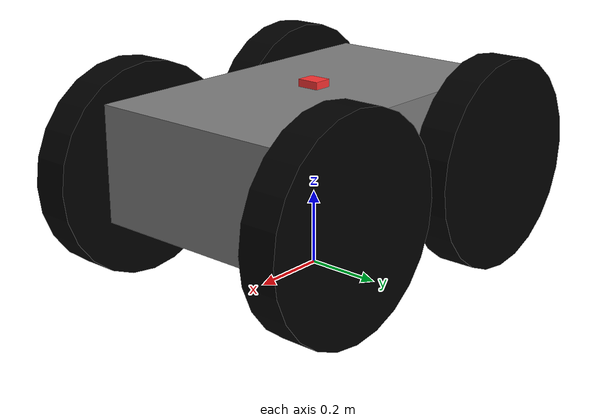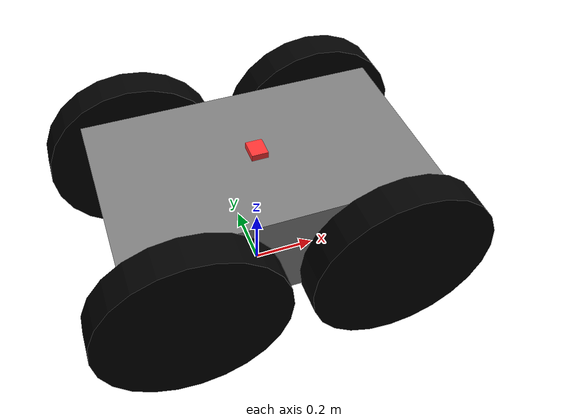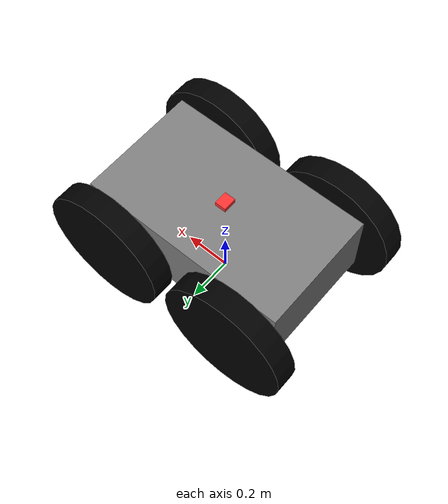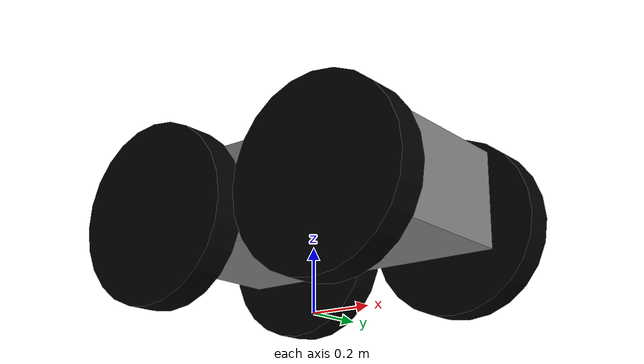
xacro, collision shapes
<?xml version="1.0"?>
<robot xmlns:xacro="http://www.ros.org/wiki/xacro"  name="RobuROC">

    <!-- This is RobuROC model for rviz visualisation -->
    <!-- Model visualisation is made of stl files and collison is made of simple shapes box and cylinders-->
    <!-- All parameters of robot are stated here: -->

    <xacro:property name="box_y" value="0.54" />
    <xacro:property name="box_x" value="0.925" />
    <xacro:property name="box_z" value="0.304" />
    <xacro:property name="box_m" value="100" />
    <xacro:property name="box_off_z" value="0.484" />
    <xacro:property name="cyl_l" value="0.1" />
    <xacro:property name="cyl_r" value="0.28" />
    <xacro:property name="cyl_m" value="10" />
    <xacro:property name="cyl_off_x" value="0.3068" />
    <xacro:property name="cyl_off_y" value="0.3425" />
    <xacro:property name="cyl_off_z" value="${box_off_z-0.204}" />
    <xacro:property name="rot_90" value="${pi/2}" />
    <xacro:property name="max_vel" value="2" />
    <xacro:property name="scale_factor" value="0.001" />
    <xacro:property name="scale" value="${scale_factor} ${scale_factor} ${scale_factor}" />
    <xacro:property name="IMU_y" value="0.06" />
    <xacro:property name="IMU_x" value="0.05" />
    <xacro:property name="IMU_z" value="0.02" />
    <xacro:property name="IMU_m" value="0.1" />
    <xacro:property name="IMU_off_z" value="${0.484+IMU_z/2}" />

    <!-- This will include inertia and color functions -->
    <xacro:include filename="include_RobuROC.xacro" />

    <!-- Initial link is empty link called world -->
    <link name="dummy"></link>

    <!-- Chassis joint has been off seted in z axis and set to fixed-->
    <joint name="chassis_joint" type="fixed">
        <parent link="dummy"/>
        <child link="chassis_link"/>
    </joint>

    <!--                Chassis Link                     -->

    <link name="chassis_link">
        <visual>
            <origin xyz="0 0 ${box_off_z}" rpy="${rot_90} 0 ${rot_90}"/>
            <geometry>
                <mesh filename="file://$(find RobuROC_sim)/meshes/chassis.STL" scale="${scale}"/>
            </geometry>
            <material name="grey" />
        </visual>
        <collision>
            <origin xyz="0 0 ${box_off_z-box_z/2}" rpy="0 0 0"/>
            <geometry>
                <box size="${box_x} ${box_y} ${box_z}" />
            </geometry>
        </collision>
       <xacro:inertial_box mass="${box_m}" x="${box_x}" y="${box_y}" z="${box_z}">
            <origin xyz="0.0 0 ${box_off_z-box_z/2}" rpy="0 0 0"/>
        </xacro:inertial_box>
    </link>

    <!-- All wheels has been modeled as continous joints -->

    <!--                WHEEL 1  +x +y                   -->

    <joint name="wheel_1_joint" type="continuous">
        <origin xyz="${cyl_off_x} ${cyl_off_y} ${cyl_off_z}" rpy="${rot_90} 0 0"/>
        <parent link="chassis_link"/>
        <child link="wheel_1_link"/>
        <axis xyz="0 0 1" />
        <limit effort="1000" velocity="${max_vel}"/>
        <dynamics damping="1.0" friction="1.0"/>
    </joint>

    <link name="wheel_1_link">
        <visual>
            <origin xyz="0 0 0" rpy="0 ${rot_90} 0"/>
            <geometry>
                <mesh filename="file://$(find RobuROC_sim)/meshes/wheel.STL" scale = "${scale}"/>
            </geometry>
            <material name="black" />
        </visual>
        <collision>
            <origin xyz="0 0 0" rpy="0 0 0"/>
            <geometry>
                <cylinder length="${cyl_l}" radius="${cyl_r}" />
            </geometry>
        </collision>
        <xacro:inertial_cylinder mass="${cyl_m}" length="${cyl_l}" radius="${cyl_r}">
            <origin xyz="0 0 0" rpy="0 0 0"/>
        </xacro:inertial_cylinder>
    </link>
    <!--                   WHEEL 2  +x -y                -->
    <joint name="wheel_2_joint" type="continuous">
        <origin xyz="${cyl_off_x} ${-cyl_off_y} ${cyl_off_z}" rpy="${rot_90} 0 0"/>
        <parent link="chassis_link"/>
        <child link="wheel_2_link"/>
        <axis xyz="0 0 1" />
        <limit effort="1000" velocity="${max_vel}"/>
        <dynamics damping="1.0" friction="1.0"/>
    </joint>

    <link name="wheel_2_link">
        <visual>
            <origin xyz="0 0 0" rpy="0 ${rot_90} 0"/>
            <geometry>
                <mesh filename="file://$(find RobuROC_sim)/meshes/wheel.STL" scale = "${scale}"/>
            </geometry>
            <material name="black" />
        </visual>
        <collision>
            <origin xyz="0 0 0" rpy="0 0 0"/>
            <geometry>
                <cylinder length="${cyl_l}" radius="${cyl_r}" />
            </geometry>
        </collision>
        <xacro:inertial_cylinder mass="${cyl_m}" length="${cyl_l}" radius="${cyl_r}">
            <origin xyz="0 0 0" rpy="0 0 0"/>
        </xacro:inertial_cylinder>
    </link>

    <!--                    WHEEL 3  -x -y               -->
    <joint name="wheel_3_joint" type="continuous">
        <origin xyz="${-cyl_off_x} ${-cyl_off_y} ${cyl_off_z}" rpy="${rot_90} 0 0"/>
        <parent link="chassis_link"/>
        <child link="wheel_3_link"/>
        <axis xyz="0 0 1" />
        <limit effort="1000" velocity="${max_vel}"/>
        <dynamics damping="1.0" friction="1.0"/>
    </joint>

    <link name="wheel_3_link">
        <visual>
            <origin xyz="0 0 0" rpy="0 ${rot_90} 0"/>
            <geometry>
                <mesh filename="file://$(find RobuROC_sim)/meshes/wheel.STL" scale = "${scale}"/>
            </geometry>
            <material name="black" />
        </visual>
        <collision>
            <origin xyz="0 0 0" rpy="0 0 0"/>
            <geometry>
                <cylinder length="${cyl_l}" radius="${cyl_r}" />
            </geometry>
        </collision>
        <xacro:inertial_cylinder mass="${cyl_m}" length="${cyl_l}" radius="${cyl_r}">
            <origin xyz="0 0 0" rpy="0 0 0"/>
        </xacro:inertial_cylinder>
    </link>

    <!--                    WHEEL 4  -x +y               -->
    <joint name="wheel_4_joint" type="continuous">
        <origin xyz="${-cyl_off_x} ${cyl_off_y} ${cyl_off_z}" rpy="${rot_90} 0 0"/>
        <parent link="chassis_link"/>
        <child link="wheel_4_link"/>
        <axis xyz="0 0 1" />
        <limit effort="1000" velocity="${max_vel}"/>
        <dynamics damping="1.0" friction="1.0"/>
    </joint>

    <link name="wheel_4_link">
        <visual>
            <origin xyz="0 0 0" rpy="0 ${rot_90} 0"/>
            <geometry>
                <mesh filename="file://$(find RobuROC_sim)/meshes/wheel.STL" scale = "${scale}"/>
            </geometry>
            <material name="black" />
        </visual>
        <collision>
            <origin xyz="0 0 0" rpy="0 0 0"/>
            <geometry>
                <cylinder length="${cyl_l}" radius="${cyl_r}" />
            </geometry>
        </collision>
        <xacro:inertial_cylinder mass="${cyl_m}" length="${cyl_l}" radius="${cyl_r}">
            <origin xyz="0 0 0" rpy="0 0 0"/>
        </xacro:inertial_cylinder>
    </link>

    <!--                IMU                              -->

    <joint name="IMU_joint" type="fixed">
        <origin xyz="0 0 ${IMU_off_z}"/>
        <parent link="chassis_link"/>
        <child link="IMU_link"/>
    </joint>

    <link name="IMU_link">
        <visual>
            <origin xyz="0 0 0" rpy="0 0 0"/>
            <geometry>
                <box size="${IMU_x} ${IMU_y} ${IMU_z}"/>
            </geometry>
            <material name="red" />
        </visual>
        <collision>
            <origin xyz="0 0 0" rpy="0 0 0"/>
            <geometry>
                <box size="${IMU_x} ${IMU_y} ${IMU_z}" />
            </geometry>
        </collision>
        <xacro:inertial_box mass="${IMU_m}" x="${IMU_x}" y="${IMU_y}" z="${IMU_z}">
            <origin xyz="0.0 0 0" rpy="0 0 0"/>
        </xacro:inertial_box>
    </link>
    <!--                  RGB-D Camera                   -->

    <!-- Include gazebo model -->
    <xacro:include filename="RobuROC_gazebo_sim.xacro" />

</robot>

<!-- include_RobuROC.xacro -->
<robot xmlns:xacro="http://www.ros.org/wiki/xacro" >

    <!-- This file is not a robot in and of itself, it just contains some useful tags that could be included in any robot -->
    <!--                Chassis                    -->
    <xacro:property name="box_y" value="0.54" />
    <xacro:property name="box_x" value="0.925" />
    <xacro:property name="box_z" value="0.304" />
    <xacro:property name="box_m" value="100" />
    <xacro:property name="box_off_z" value="0.484" />
    <xacro:property name="chassis_vis_origin" value="0 0 ${box_off_z}" />
    <xacro:property name="chassis_col_origin" value="0.0 0 ${box_off_z-box_z/2}" />
    <!--                Wheels                     -->
    <xacro:property name="cyl_l" value="0.1" />
    <xacro:property name="cyl_r" value="0.28" />
    <xacro:property name="cyl_m" value="10" />
    <xacro:property name="cyl_off_x" value="0.3068" />
    <xacro:property name="cyl_off_y" value="0.3425" />
    <xacro:property name="cyl_off_z" value="${box_off_z-0.204}" />
    <xacro:property name="rot_90" value="${pi/2}" />
    <xacro:property name="max_vel" value="2" />
    <xacro:property name="wheel_1_origin" value="${cyl_off_x} ${cyl_off_y} ${cyl_off_z}" />
    <xacro:property name="wheel_2_origin" value="${cyl_off_x} ${-cyl_off_y} ${cyl_off_z}" />
    <xacro:property name="wheel_3_origin" value="${-cyl_off_x} ${-cyl_off_y} ${cyl_off_z}" />
    <xacro:property name="wheel_4_origin" value="${-cyl_off_x} ${cyl_off_y} ${cyl_off_z}" />
    <!--                    STL                    -->
    <xacro:property name="scale_factor" value="0.001" />
    <xacro:property name="scale" value="${scale_factor} ${scale_factor} ${scale_factor}" />
    <!--                    Camera                 -->
    <xacro:property name="camera_off_x" value="0.6" />
    <xacro:property name="camera_off_z" value="0.55" />
    <xacro:property name="camera_rot" value="${16*pi/180}" />
    <xacro:property name="camera_1_origin" value="${camera_off_x} 0 ${camera_off_z}" />
    <xacro:property name="camera_2_origin" value="${-camera_off_x} 0 ${camera_off_z}" />
    <xacro:property name="camera_1_rotation" value="0 ${camera_rot} 0" />
    <xacro:property name="camera_2_rotation" value="0 ${camera_rot} ${pi}" />
    <!--                    Lidar                  -->
    <xacro:property name="lidar_off_x" value="-0.12" />
    <xacro:property name="lidar_off_z" value="${box_off_z+0.155}" />
    <xacro:property name="lidar_origin" value="${lidar_off_x} 0 ${lidar_off_z}" />

    <!-- Specify some colours -->

    <material name="white">
        <color rgba="1 1 1 1"/>
    </material>

    <material name="orange">
        <color rgba="1 0.3 0.1 1"/>
    </material>

    <material name="blue">
        <color rgba="0.2 0.2 1 1"/>
    </material>

    <material name="green">
        <color rgba="0.2 1 0.2 1"/>
    </material>

    <material name="red">
        <color rgba="1 0.2 0.2 1"/>
    </material>

    <material name="black">
        <color rgba="0 0 0 1"/>
    </material>

    <material name="grey">
        <color rgba="0.5 0.5 0.5 1"/>
    </material>

    <!-- Specify some standard inertial calculations https://en.wikipedia.org/wiki/List_of_moments_of_inertia -->
    <!-- These make use of xacro's mathematical functionality -->

    <xacro:macro name="inertial_sphere" params="mass radius *origin">
        <inertial>
            <xacro:insert_block name="origin"/>
            <mass value="${mass}" />
            <inertia ixx="${(2/5) * mass * (radius*radius)}" ixy="0.0" ixz="0.0"
                    iyy="${(2/5) * mass * (radius*radius)}" iyz="0.0"
                    izz="${(2/5) * mass * (radius*radius)}" />
        </inertial>
    </xacro:macro>

    <xacro:macro name="inertial_box" params="mass x y z *origin">
        <inertial>
            <xacro:insert_block name="origin"/>
            <mass value="${mass}" />
            <inertia ixx="${(1/12) * mass * (y*y+z*z)}" ixy="0.0" ixz="0.0"
                    iyy="${(1/12) * mass * (x*x+z*z)}" iyz="0.0"
                    izz="${(1/12) * mass * (x*x+y*y)}" />
        </inertial>
    </xacro:macro>

    <xacro:macro name="inertial_cylinder" params="mass length radius *origin">
        <inertial>
            <xacro:insert_block name="origin"/>
            <mass value="${mass}" />
            <inertia ixx="${(1/12) * mass * (3*radius*radius + length*length)}" ixy="0.0" ixz="0.0"
                    iyy="${(1/12) * mass * (3*radius*radius + length*length)}" iyz="0.0"
                    izz="${(1/2) * mass * (radius*radius)}" />
        </inertial>
    </xacro:macro>

</robot>
